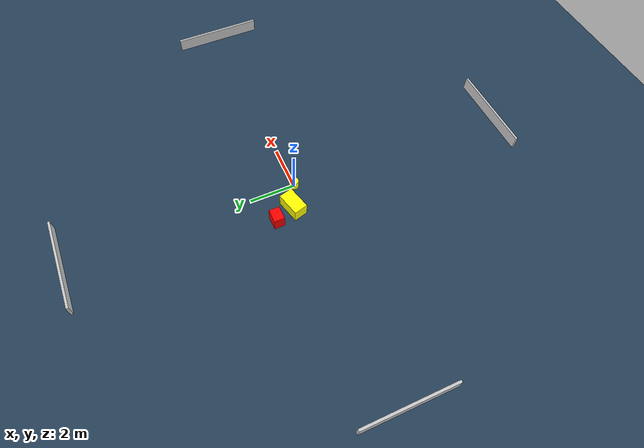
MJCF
<?xml version="1.0" ?>
<mujoco model="generated_environment">
  <option timestep="0.01" integrator="RK4" cone="elliptic"/>
  <default>
    <geom density="1"/>
  </default>
  <asset>
    <texture builtin="gradient" height="3072" name="skybox" rgb1="0.3 0.5 0.7" rgb2="0 0 0" type="skybox" width="512"/>
    <texture builtin="checker" height="300" name="groundplane" rgb1="0.2 0.3 0.4" rgb2="0.1 0.2 0.3" type="2d" width="300"/>
    <material name="groundplane" reflectance="0.2" texrepeat="5 5" texture="groundplane"/>
  </asset>
  <worldbody>
    <light dir="0 0 -1" directional="true" pos="0 0 1.5"/>
    <geom condim="3" friction="0.5 0.005 0.001" material="groundplane" name="floor" pos="0 0 0" size="0 0 0.05" type="plane"/>
    <body name="walls">
      <geom name="wall_1" condim="4" pos="-10.0 0.0 0.3" rgba="0.800000011920929 0.800000011920929 0.800000011920929 1.0" size="0.05 2.0 0.3" type="box"/>
      <geom name="wall_2" condim="4" pos="10.0 0.0 0.3" rgba="0.800000011920929 0.800000011920929 0.800000011920929 1.0" size="0.05 2.0 0.3" type="box"/>
      <geom name="wall_3" condim="4" pos="0.0 -10.0 0.3" rgba="0.800000011920929 0.800000011920929 0.800000011920929 1.0" size="2.0 0.05 0.3" type="box"/>
      <geom name="wall_4" condim="4" pos="0.0 10.0 0.3" rgba="0.800000011920929 0.800000011920929 0.800000011920929 1.0" size="2.0 0.05 0.3" type="box"/>
    </body>
    <body name="robot">
      <joint name="joint_x" type="slide" pos="0 0 0" axis="1 0 0"/>
      <joint name="joint_y" type="slide" pos="0 0 0" axis="0 1 0"/>
      <geom name="robot" type="cylinder" pos="0.0 0.0 0.2" size="0.2 0.2 0.0" mass="5.0" friction="1.0 0.005 0.0001" condim="4" rgba="1.0 1.0 0.0 1.0"/>
    </body>
    <body name="obstacle_1_movable">
      <geom name="obstacle_1_movable" condim="4" pos="-1.0232964168533116 0.47039687701922767 0.3" euler="0 0 195.13445881568308" friction="0.0 0.005 0.001" rgba="1.0 1.0 0.0 1.0" size="0.5256796600225375 0.30756759475102796 0.3" type="box" mass="0.1"/>
      <joint type="free"/>
    </body>
    <body name="obstacle_2_static">
      <geom name="obstacle_2_static" condim="4" pos="-1.3512633475605256 1.3473591278479753 0.3" euler="0 0 180.93994711044914" friction="0.0 0.005 0.001" rgba="1.0 0.0 0.0 1.0" size="0.2971921041343295 0.23027825790819426 0.3" type="box"/>
    </body>
  </worldbody>
  <actuator>
    <motor name="actuator_x" joint="joint_x" gear="1" ctrlrange="-1 1"/>
    <motor name="actuator_y" joint="joint_y" gear="1" ctrlrange="-1 1"/>
  </actuator>
</mujoco>
